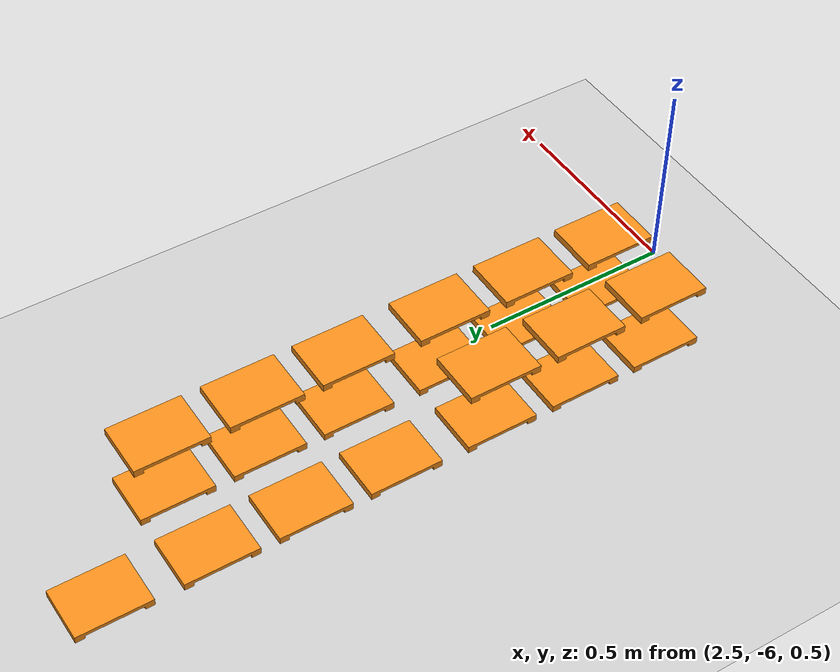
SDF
<sdf version="1.7">
 <world name="default">
  <model name="ground_plane">
   <static>1</static>
   <link name="link">
    <collision name="collision">
     <geometry><plane><normal>0 0 1</normal><size>100 100</size></plane></geometry>
     <surface>
      <contact><collide_bitmask>65535</collide_bitmask></contact>
      <friction><ode><mu>1</mu><mu2>1</mu2></ode></friction>
     </surface>
    </collision>
    <visual name="visual">
     <cast_shadows>0</cast_shadows>
     <geometry><plane><normal>0 0 1</normal><size>100 100</size></plane></geometry>
     <material>
      <script><uri>file://media/materials/scripts/gazebo.material</uri><name>Gazebo/Grey</name></script>
     </material>
    </visual>
   </link>
  </model>
  <model name="pallet_223">
   <pose>2.60533 -4.887 0.33091 2.3e-05 -0.014052 -7e-06</pose>
   <link name="link">
    <inertial>
     <pose>0 0 0 0 -0 1.571</pose>
     <inertia>
      <ixx>0.00220983</ixx>
      <ixy>0</ixy>
      <ixz>0</ixz>
      <iyy>0.00128087</iyy>
      <iyz>0</iyz>
      <izz>0.00244903</izz>
     </inertia>
     <mass>0.01</mass>
    </inertial>
    <visual name="visual1">
     <cast_shadows>0</cast_shadows>
     <geometry><mesh><uri>model://pallet/meshes/pallet.stl</uri></mesh></geometry>
     <material>
      <script><uri>file://media/materials/scripts/gazebo.material</uri><name>Gazebo/Orange</name></script>
      <shader type="pixel"><normal_map>__default__</normal_map></shader>
      <emissive>0 0 0 1</emissive>
     </material>
     <pose>0 0 -0 0 -0 1.571</pose>
    </visual>
    <collision name="collision_0">
     <pose>0 0 0 0 -0 1.571</pose>
     <geometry><mesh><uri>model://pallet/meshes/pallet.stl</uri></mesh></geometry>
     <surface>
      <friction>
       <ode><mu>1</mu><mu2>1</mu2><fdir1>0 0 0</fdir1><slip1>0</slip1><slip2>0</slip2></ode>
       <torsional>
        <coefficient>1</coefficient>
        <patch_radius>0</patch_radius>
        <surface_radius>0</surface_radius>
        <use_patch_radius>1</use_patch_radius>
        <ode><slip>0</slip></ode>
       </torsional>
      </friction>
      <bounce><restitution_coefficient>0</restitution_coefficient><threshold>1e+06</threshold></bounce>
      <contact>
       <collide_without_contact>0</collide_without_contact>
       <collide_without_contact_bitmask>1</collide_without_contact_bitmask>
       <collide_bitmask>1</collide_bitmask>
       <ode>
        <soft_cfm>0</soft_cfm>
        <soft_erp>0.2</soft_erp>
        <kp>1e+13</kp>
        <kd>1</kd>
        <max_vel>0.01</max_vel>
        <min_depth>0</min_depth>
       </ode>
       <bullet>
        <split_impulse>1</split_impulse>
        <split_impulse_penetration_threshold>-0.01</split_impulse_penetration_threshold>
        <soft_cfm>0</soft_cfm>
        <soft_erp>0.2</soft_erp>
        <kp>1e+13</kp>
        <kd>1</kd>
       </bullet>
      </contact>
     </surface>
    </collision>
   </link>
   <static>0</static>
  </model>
  <model name="pallet_224">
   <pose>2.60533 -4.637 0.330912 1.3e-05 -0.014053 5e-06</pose>
   <link name="link">
    <inertial>
     <pose>0 0 0 0 -0 1.571</pose>
     <inertia>
      <ixx>0.00220983</ixx>
      <ixy>0</ixy>
      <ixz>0</ixz>
      <iyy>0.00128087</iyy>
      <iyz>0</iyz>
      <izz>0.00244903</izz>
     </inertia>
     <mass>0.01</mass>
    </inertial>
    <visual name="visual1">
     <cast_shadows>0</cast_shadows>
     <geometry><mesh><uri>model://pallet/meshes/pallet.stl</uri></mesh></geometry>
     <material>
      <script><uri>file://media/materials/scripts/gazebo.material</uri><name>Gazebo/Orange</name></script>
      <shader type="pixel"><normal_map>__default__</normal_map></shader>
      <emissive>0 0 0 1</emissive>
     </material>
     <pose>0 0 -0 0 -0 1.571</pose>
    </visual>
    <collision name="collision_0">
     <pose>0 0 0 0 -0 1.571</pose>
     <geometry><mesh><uri>model://pallet/meshes/pallet.stl</uri></mesh></geometry>
     <surface>
      <friction>
       <ode><mu>1</mu><mu2>1</mu2><fdir1>0 0 0</fdir1><slip1>0</slip1><slip2>0</slip2></ode>
       <torsional>
        <coefficient>1</coefficient>
        <patch_radius>0</patch_radius>
        <surface_radius>0</surface_radius>
        <use_patch_radius>1</use_patch_radius>
        <ode><slip>0</slip></ode>
       </torsional>
      </friction>
      <bounce><restitution_coefficient>0</restitution_coefficient><threshold>1e+06</threshold></bounce>
      <contact>
       <collide_without_contact>0</collide_without_contact>
       <collide_without_contact_bitmask>1</collide_without_contact_bitmask>
       <collide_bitmask>1</collide_bitmask>
       <ode>
        <soft_cfm>0</soft_cfm>
        <soft_erp>0.2</soft_erp>
        <kp>1e+13</kp>
        <kd>1</kd>
        <max_vel>0.01</max_vel>
        <min_depth>0</min_depth>
       </ode>
       <bullet>
        <split_impulse>1</split_impulse>
        <split_impulse_penetration_threshold>-0.01</split_impulse_penetration_threshold>
        <soft_cfm>0</soft_cfm>
        <soft_erp>0.2</soft_erp>
        <kp>1e+13</kp>
        <kd>1</kd>
       </bullet>
      </contact>
     </surface>
    </collision>
   </link>
   <static>0</static>
  </model>
  <model name="pallet_225">
   <pose>2.60533 -5.137 0.330909 2.9e-05 -0.014052 3e-06</pose>
   <link name="link">
    <inertial>
     <pose>0 0 0 0 -0 1.571</pose>
     <inertia>
      <ixx>0.00220983</ixx>
      <ixy>0</ixy>
      <ixz>0</ixz>
      <iyy>0.00128087</iyy>
      <iyz>0</iyz>
      <izz>0.00244903</izz>
     </inertia>
     <mass>0.01</mass>
    </inertial>
    <visual name="visual1">
     <cast_shadows>0</cast_shadows>
     <geometry><mesh><uri>model://pallet/meshes/pallet.stl</uri></mesh></geometry>
     <material>
      <script><uri>file://media/materials/scripts/gazebo.material</uri><name>Gazebo/Orange</name></script>
      <shader type="pixel"><normal_map>__default__</normal_map></shader>
      <emissive>0 0 0 1</emissive>
     </material>
     <pose>0 0 -0 0 -0 1.571</pose>
    </visual>
    <collision name="collision_0">
     <pose>0 0 0 0 -0 1.571</pose>
     <geometry><mesh><uri>model://pallet/meshes/pallet.stl</uri></mesh></geometry>
     <surface>
      <friction>
       <ode><mu>1</mu><mu2>1</mu2><fdir1>0 0 0</fdir1><slip1>0</slip1><slip2>0</slip2></ode>
       <torsional>
        <coefficient>1</coefficient>
        <patch_radius>0</patch_radius>
        <surface_radius>0</surface_radius>
        <use_patch_radius>1</use_patch_radius>
        <ode><slip>0</slip></ode>
       </torsional>
      </friction>
      <bounce><restitution_coefficient>0</restitution_coefficient><threshold>1e+06</threshold></bounce>
      <contact>
       <collide_without_contact>0</collide_without_contact>
       <collide_without_contact_bitmask>1</collide_without_contact_bitmask>
       <collide_bitmask>1</collide_bitmask>
       <ode>
        <soft_cfm>0</soft_cfm>
        <soft_erp>0.2</soft_erp>
        <kp>1e+13</kp>
        <kd>1</kd>
        <max_vel>0.01</max_vel>
        <min_depth>0</min_depth>
       </ode>
       <bullet>
        <split_impulse>1</split_impulse>
        <split_impulse_penetration_threshold>-0.01</split_impulse_penetration_threshold>
        <soft_cfm>0</soft_cfm>
        <soft_erp>0.2</soft_erp>
        <kp>1e+13</kp>
        <kd>1</kd>
       </bullet>
      </contact>
     </surface>
    </collision>
   </link>
   <static>0</static>
  </model>
  <model name="pallet_226">
   <pose>2.60534 -5.6625 0.330907 2.4e-05 -0.014052 -7e-06</pose>
   <link name="link">
    <inertial>
     <pose>0 0 0 0 -0 1.571</pose>
     <inertia>
      <ixx>0.00220983</ixx>
      <ixy>0</ixy>
      <ixz>0</ixz>
      <iyy>0.00128087</iyy>
      <iyz>0</iyz>
      <izz>0.00244903</izz>
     </inertia>
     <mass>0.01</mass>
    </inertial>
    <visual name="visual1">
     <cast_shadows>0</cast_shadows>
     <geometry><mesh><uri>model://pallet/meshes/pallet.stl</uri></mesh></geometry>
     <material>
      <script><uri>file://media/materials/scripts/gazebo.material</uri><name>Gazebo/Orange</name></script>
      <shader type="pixel"><normal_map>__default__</normal_map></shader>
      <emissive>0 0 0 1</emissive>
     </material>
     <pose>0 0 -0 0 -0 1.571</pose>
    </visual>
    <collision name="collision_0">
     <pose>0 0 0 0 -0 1.571</pose>
     <geometry><mesh><uri>model://pallet/meshes/pallet.stl</uri></mesh></geometry>
     <surface>
      <friction>
       <ode><mu>1</mu><mu2>1</mu2><fdir1>0 0 0</fdir1><slip1>0</slip1><slip2>0</slip2></ode>
       <torsional>
        <coefficient>1</coefficient>
        <patch_radius>0</patch_radius>
        <surface_radius>0</surface_radius>
        <use_patch_radius>1</use_patch_radius>
        <ode><slip>0</slip></ode>
       </torsional>
      </friction>
      <bounce><restitution_coefficient>0</restitution_coefficient><threshold>1e+06</threshold></bounce>
      <contact>
       <collide_without_contact>0</collide_without_contact>
       <collide_without_contact_bitmask>1</collide_without_contact_bitmask>
       <collide_bitmask>1</collide_bitmask>
       <ode>
        <soft_cfm>0</soft_cfm>
        <soft_erp>0.2</soft_erp>
        <kp>1e+13</kp>
        <kd>1</kd>
        <max_vel>0.01</max_vel>
        <min_depth>0</min_depth>
       </ode>
       <bullet>
        <split_impulse>1</split_impulse>
        <split_impulse_penetration_threshold>-0.01</split_impulse_penetration_threshold>
        <soft_cfm>0</soft_cfm>
        <soft_erp>0.2</soft_erp>
        <kp>1e+13</kp>
        <kd>1</kd>
       </bullet>
      </contact>
     </surface>
    </collision>
   </link>
   <static>0</static>
  </model>
  <model name="pallet_227">
   <pose>2.60534 -5.4125 0.330909 1.1e-05 -0.014052 3e-06</pose>
   <link name="link">
    <inertial>
     <pose>0 0 0 0 -0 1.571</pose>
     <inertia>
      <ixx>0.00220983</ixx>
      <ixy>0</ixy>
      <ixz>0</ixz>
      <iyy>0.00128087</iyy>
      <iyz>0</iyz>
      <izz>0.00244903</izz>
     </inertia>
     <mass>0.01</mass>
    </inertial>
    <visual name="visual1">
     <cast_shadows>0</cast_shadows>
     <geometry><mesh><uri>model://pallet/meshes/pallet.stl</uri></mesh></geometry>
     <material>
      <script><uri>file://media/materials/scripts/gazebo.material</uri><name>Gazebo/Orange</name></script>
      <shader type="pixel"><normal_map>__default__</normal_map></shader>
      <emissive>0 0 0 1</emissive>
     </material>
     <pose>0 0 -0 0 -0 1.571</pose>
    </visual>
    <collision name="collision_0">
     <pose>0 0 0 0 -0 1.571</pose>
     <geometry><mesh><uri>model://pallet/meshes/pallet.stl</uri></mesh></geometry>
     <surface>
      <friction>
       <ode><mu>1</mu><mu2>1</mu2><fdir1>0 0 0</fdir1><slip1>0</slip1><slip2>0</slip2></ode>
       <torsional>
        <coefficient>1</coefficient>
        <patch_radius>0</patch_radius>
        <surface_radius>0</surface_radius>
        <use_patch_radius>1</use_patch_radius>
        <ode><slip>0</slip></ode>
       </torsional>
      </friction>
      <bounce><restitution_coefficient>0</restitution_coefficient><threshold>1e+06</threshold></bounce>
      <contact>
       <collide_without_contact>0</collide_without_contact>
       <collide_without_contact_bitmask>1</collide_without_contact_bitmask>
       <collide_bitmask>1</collide_bitmask>
       <ode>
        <soft_cfm>0</soft_cfm>
        <soft_erp>0.2</soft_erp>
        <kp>1e+13</kp>
        <kd>1</kd>
        <max_vel>0.01</max_vel>
        <min_depth>0</min_depth>
       </ode>
       <bullet>
        <split_impulse>1</split_impulse>
        <split_impulse_penetration_threshold>-0.01</split_impulse_penetration_threshold>
        <soft_cfm>0</soft_cfm>
        <soft_erp>0.2</soft_erp>
        <kp>1e+13</kp>
        <kd>1</kd>
       </bullet>
      </contact>
     </surface>
    </collision>
   </link>
   <static>0</static>
  </model>
  <model name="pallet_228">
   <pose>2.60534 -5.9125 0.330907 1.7e-05 -0.014052 7e-06</pose>
   <link name="link">
    <inertial>
     <pose>0 0 0 0 -0 1.571</pose>
     <inertia>
      <ixx>0.00220983</ixx>
      <ixy>0</ixy>
      <ixz>0</ixz>
      <iyy>0.00128087</iyy>
      <iyz>0</iyz>
      <izz>0.00244903</izz>
     </inertia>
     <mass>0.01</mass>
    </inertial>
    <visual name="visual1">
     <cast_shadows>0</cast_shadows>
     <geometry><mesh><uri>model://pallet/meshes/pallet.stl</uri></mesh></geometry>
     <material>
      <script><uri>file://media/materials/scripts/gazebo.material</uri><name>Gazebo/Orange</name></script>
      <shader type="pixel"><normal_map>__default__</normal_map></shader>
      <emissive>0 0 0 1</emissive>
     </material>
     <pose>0 0 -0 0 -0 1.571</pose>
    </visual>
    <collision name="collision_0">
     <pose>0 0 0 0 -0 1.571</pose>
     <geometry><mesh><uri>model://pallet/meshes/pallet.stl</uri></mesh></geometry>
     <surface>
      <friction>
       <ode><mu>1</mu><mu2>1</mu2><fdir1>0 0 0</fdir1><slip1>0</slip1><slip2>0</slip2></ode>
       <torsional>
        <coefficient>1</coefficient>
        <patch_radius>0</patch_radius>
        <surface_radius>0</surface_radius>
        <use_patch_radius>1</use_patch_radius>
        <ode><slip>0</slip></ode>
       </torsional>
      </friction>
      <bounce><restitution_coefficient>0</restitution_coefficient><threshold>1e+06</threshold></bounce>
      <contact>
       <collide_without_contact>0</collide_without_contact>
       <collide_without_contact_bitmask>1</collide_without_contact_bitmask>
       <collide_bitmask>1</collide_bitmask>
       <ode>
        <soft_cfm>0</soft_cfm>
        <soft_erp>0.2</soft_erp>
        <kp>1e+13</kp>
        <kd>1</kd>
        <max_vel>0.01</max_vel>
        <min_depth>0</min_depth>
       </ode>
       <bullet>
        <split_impulse>1</split_impulse>
        <split_impulse_penetration_threshold>-0.01</split_impulse_penetration_threshold>
        <soft_cfm>0</soft_cfm>
        <soft_erp>0.2</soft_erp>
        <kp>1e+13</kp>
        <kd>1</kd>
       </bullet>
      </contact>
     </surface>
    </collision>
   </link>
   <static>0</static>
  </model>
  <model name="pallet_234">
   <pose>2.38565 -4.3625 0.330988 2.9e-05 -0.013088 9e-06</pose>
   <link name="link">
    <inertial>
     <pose>0 0 0 0 -0 1.571</pose>
     <inertia>
      <ixx>0.00220983</ixx>
      <ixy>0</ixy>
      <ixz>0</ixz>
      <iyy>0.00128087</iyy>
      <iyz>0</iyz>
      <izz>0.00244903</izz>
     </inertia>
     <mass>0.01</mass>
    </inertial>
    <visual name="visual1">
     <cast_shadows>0</cast_shadows>
     <geometry><mesh><uri>model://pallet/meshes/pallet.stl</uri></mesh></geometry>
     <material>
      <script><uri>file://media/materials/scripts/gazebo.material</uri><name>Gazebo/Orange</name></script>
      <shader type="pixel"><normal_map>__default__</normal_map></shader>
      <emissive>0 0 0 1</emissive>
     </material>
     <pose>0 0 -0 0 -0 1.571</pose>
    </visual>
    <collision name="collision_0">
     <pose>0 0 0 0 -0 1.571</pose>
     <geometry><mesh><uri>model://pallet/meshes/pallet.stl</uri></mesh></geometry>
     <surface>
      <friction>
       <ode><mu>1</mu><mu2>1</mu2><fdir1>0 0 0</fdir1><slip1>0</slip1><slip2>0</slip2></ode>
       <torsional>
        <coefficient>1</coefficient>
        <patch_radius>0</patch_radius>
        <surface_radius>0</surface_radius>
        <use_patch_radius>1</use_patch_radius>
        <ode><slip>0</slip></ode>
       </torsional>
      </friction>
      <bounce><restitution_coefficient>0</restitution_coefficient><threshold>1e+06</threshold></bounce>
      <contact>
       <collide_without_contact>0</collide_without_contact>
       <collide_without_contact_bitmask>1</collide_without_contact_bitmask>
       <collide_bitmask>1</collide_bitmask>
       <ode>
        <soft_cfm>0</soft_cfm>
        <soft_erp>0.2</soft_erp>
        <kp>1e+13</kp>
        <kd>1</kd>
        <max_vel>0.01</max_vel>
        <min_depth>0</min_depth>
       </ode>
       <bullet>
        <split_impulse>1</split_impulse>
        <split_impulse_penetration_threshold>-0.01</split_impulse_penetration_threshold>
        <soft_cfm>0</soft_cfm>
        <soft_erp>0.2</soft_erp>
        <kp>1e+13</kp>
        <kd>1</kd>
       </bullet>
      </contact>
     </surface>
    </collision>
   </link>
   <static>0</static>
  </model>
  <model name="pallet_235">
   <pose>2.38565 -4.887 0.330986 2.7e-05 -0.013089 -8e-06</pose>
   <link name="link">
    <inertial>
     <pose>0 0 0 0 -0 1.571</pose>
     <inertia>
      <ixx>0.00220983</ixx>
      <ixy>0</ixy>
      <ixz>0</ixz>
      <iyy>0.00128087</iyy>
      <iyz>0</iyz>
      <izz>0.00244903</izz>
     </inertia>
     <mass>0.01</mass>
    </inertial>
    <visual name="visual1">
     <cast_shadows>0</cast_shadows>
     <geometry><mesh><uri>model://pallet/meshes/pallet.stl</uri></mesh></geometry>
     <material>
      <script><uri>file://media/materials/scripts/gazebo.material</uri><name>Gazebo/Orange</name></script>
      <shader type="pixel"><normal_map>__default__</normal_map></shader>
      <emissive>0 0 0 1</emissive>
     </material>
     <pose>0 0 -0 0 -0 1.571</pose>
    </visual>
    <collision name="collision_0">
     <pose>0 0 0 0 -0 1.571</pose>
     <geometry><mesh><uri>model://pallet/meshes/pallet.stl</uri></mesh></geometry>
     <surface>
      <friction>
       <ode><mu>1</mu><mu2>1</mu2><fdir1>0 0 0</fdir1><slip1>0</slip1><slip2>0</slip2></ode>
       <torsional>
        <coefficient>1</coefficient>
        <patch_radius>0</patch_radius>
        <surface_radius>0</surface_radius>
        <use_patch_radius>1</use_patch_radius>
        <ode><slip>0</slip></ode>
       </torsional>
      </friction>
      <bounce><restitution_coefficient>0</restitution_coefficient><threshold>1e+06</threshold></bounce>
      <contact>
       <collide_without_contact>0</collide_without_contact>
       <collide_without_contact_bitmask>1</collide_without_contact_bitmask>
       <collide_bitmask>1</collide_bitmask>
       <ode>
        <soft_cfm>0</soft_cfm>
        <soft_erp>0.2</soft_erp>
        <kp>1e+13</kp>
        <kd>1</kd>
        <max_vel>0.01</max_vel>
        <min_depth>0</min_depth>
       </ode>
       <bullet>
        <split_impulse>1</split_impulse>
        <split_impulse_penetration_threshold>-0.01</split_impulse_penetration_threshold>
        <soft_cfm>0</soft_cfm>
        <soft_erp>0.2</soft_erp>
        <kp>1e+13</kp>
        <kd>1</kd>
       </bullet>
      </contact>
     </surface>
    </collision>
   </link>
   <static>0</static>
  </model>
  <model name="pallet_236">
   <pose>2.38565 -4.637 0.330988 2.2e-05 -0.013088 5e-06</pose>
   <link name="link">
    <inertial>
     <pose>0 0 0 0 -0 1.571</pose>
     <inertia>
      <ixx>0.00220983</ixx>
      <ixy>0</ixy>
      <ixz>0</ixz>
      <iyy>0.00128087</iyy>
      <iyz>0</iyz>
      <izz>0.00244903</izz>
     </inertia>
     <mass>0.01</mass>
    </inertial>
    <visual name="visual1">
     <cast_shadows>0</cast_shadows>
     <geometry><mesh><uri>model://pallet/meshes/pallet.stl</uri></mesh></geometry>
     <material>
      <script><uri>file://media/materials/scripts/gazebo.material</uri><name>Gazebo/Orange</name></script>
      <shader type="pixel"><normal_map>__default__</normal_map></shader>
      <emissive>0 0 0 1</emissive>
     </material>
     <pose>0 0 -0 0 -0 1.571</pose>
    </visual>
    <collision name="collision_0">
     <pose>0 0 0 0 -0 1.571</pose>
     <geometry><mesh><uri>model://pallet/meshes/pallet.stl</uri></mesh></geometry>
     <surface>
      <friction>
       <ode><mu>1</mu><mu2>1</mu2><fdir1>0 0 0</fdir1><slip1>0</slip1><slip2>0</slip2></ode>
       <torsional>
        <coefficient>1</coefficient>
        <patch_radius>0</patch_radius>
        <surface_radius>0</surface_radius>
        <use_patch_radius>1</use_patch_radius>
        <ode><slip>0</slip></ode>
       </torsional>
      </friction>
      <bounce><restitution_coefficient>0</restitution_coefficient><threshold>1e+06</threshold></bounce>
      <contact>
       <collide_without_contact>0</collide_without_contact>
       <collide_without_contact_bitmask>1</collide_without_contact_bitmask>
       <collide_bitmask>1</collide_bitmask>
       <ode>
        <soft_cfm>0</soft_cfm>
        <soft_erp>0.2</soft_erp>
        <kp>1e+13</kp>
        <kd>1</kd>
        <max_vel>0.01</max_vel>
        <min_depth>0</min_depth>
       </ode>
       <bullet>
        <split_impulse>1</split_impulse>
        <split_impulse_penetration_threshold>-0.01</split_impulse_penetration_threshold>
        <soft_cfm>0</soft_cfm>
        <soft_erp>0.2</soft_erp>
        <kp>1e+13</kp>
        <kd>1</kd>
       </bullet>
      </contact>
     </surface>
    </collision>
   </link>
   <static>0</static>
  </model>
  <model name="pallet_237">
   <pose>2.38565 -5.137 0.330985 2.6e-05 -0.013087 3e-06</pose>
   <link name="link">
    <inertial>
     <pose>0 0 0 0 -0 1.571</pose>
     <inertia>
      <ixx>0.00220983</ixx>
      <ixy>0</ixy>
      <ixz>0</ixz>
      <iyy>0.00128087</iyy>
      <iyz>0</iyz>
      <izz>0.00244903</izz>
     </inertia>
     <mass>0.01</mass>
    </inertial>
    <visual name="visual1">
     <cast_shadows>0</cast_shadows>
     <geometry><mesh><uri>model://pallet/meshes/pallet.stl</uri></mesh></geometry>
     <material>
      <script><uri>file://media/materials/scripts/gazebo.material</uri><name>Gazebo/Orange</name></script>
      <shader type="pixel"><normal_map>__default__</normal_map></shader>
      <emissive>0 0 0 1</emissive>
     </material>
     <pose>0 0 -0 0 -0 1.571</pose>
    </visual>
    <collision name="collision_0">
     <pose>0 0 0 0 -0 1.571</pose>
     <geometry><mesh><uri>model://pallet/meshes/pallet.stl</uri></mesh></geometry>
     <surface>
      <friction>
       <ode><mu>1</mu><mu2>1</mu2><fdir1>0 0 0</fdir1><slip1>0</slip1><slip2>0</slip2></ode>
       <torsional>
        <coefficient>1</coefficient>
        <patch_radius>0</patch_radius>
        <surface_radius>0</surface_radius>
        <use_patch_radius>1</use_patch_radius>
        <ode><slip>0</slip></ode>
       </torsional>
      </friction>
      <bounce><restitution_coefficient>0</restitution_coefficient><threshold>1e+06</threshold></bounce>
      <contact>
       <collide_without_contact>0</collide_without_contact>
       <collide_without_contact_bitmask>1</collide_without_contact_bitmask>
       <collide_bitmask>1</collide_bitmask>
       <ode>
        <soft_cfm>0</soft_cfm>
        <soft_erp>0.2</soft_erp>
        <kp>1e+13</kp>
        <kd>1</kd>
        <max_vel>0.01</max_vel>
        <min_depth>0</min_depth>
       </ode>
       <bullet>
        <split_impulse>1</split_impulse>
        <split_impulse_penetration_threshold>-0.01</split_impulse_penetration_threshold>
        <soft_cfm>0</soft_cfm>
        <soft_erp>0.2</soft_erp>
        <kp>1e+13</kp>
        <kd>1</kd>
       </bullet>
      </contact>
     </surface>
    </collision>
   </link>
   <static>0</static>
  </model>
  <model name="pallet_238">
   <pose>2.38566 -5.6625 0.330983 2.7e-05 -0.013088 -7e-06</pose>
   <link name="link">
    <inertial>
     <pose>0 0 0 0 -0 1.571</pose>
     <inertia>
      <ixx>0.00220983</ixx>
      <ixy>0</ixy>
      <ixz>0</ixz>
      <iyy>0.00128087</iyy>
      <iyz>0</iyz>
      <izz>0.00244903</izz>
     </inertia>
     <mass>0.01</mass>
    </inertial>
    <visual name="visual1">
     <cast_shadows>0</cast_shadows>
     <geometry><mesh><uri>model://pallet/meshes/pallet.stl</uri></mesh></geometry>
     <material>
      <script><uri>file://media/materials/scripts/gazebo.material</uri><name>Gazebo/Orange</name></script>
      <shader type="pixel"><normal_map>__default__</normal_map></shader>
      <emissive>0 0 0 1</emissive>
     </material>
     <pose>0 0 -0 0 -0 1.571</pose>
    </visual>
    <collision name="collision_0">
     <pose>0 0 0 0 -0 1.571</pose>
     <geometry><mesh><uri>model://pallet/meshes/pallet.stl</uri></mesh></geometry>
     <surface>
      <friction>
       <ode><mu>1</mu><mu2>1</mu2><fdir1>0 0 0</fdir1><slip1>0</slip1><slip2>0</slip2></ode>
       <torsional>
        <coefficient>1</coefficient>
        <patch_radius>0</patch_radius>
        <surface_radius>0</surface_radius>
        <use_patch_radius>1</use_patch_radius>
        <ode><slip>0</slip></ode>
       </torsional>
      </friction>
      <bounce><restitution_coefficient>0</restitution_coefficient><threshold>1e+06</threshold></bounce>
      <contact>
       <collide_without_contact>0</collide_without_contact>
       <collide_without_contact_bitmask>1</collide_without_contact_bitmask>
       <collide_bitmask>1</collide_bitmask>
       <ode>
        <soft_cfm>0</soft_cfm>
        <soft_erp>0.2</soft_erp>
        <kp>1e+13</kp>
        <kd>1</kd>
        <max_vel>0.01</max_vel>
        <min_depth>0</min_depth>
       </ode>
       <bullet>
        <split_impulse>1</split_impulse>
        <split_impulse_penetration_threshold>-0.01</split_impulse_penetration_threshold>
        <soft_cfm>0</soft_cfm>
        <soft_erp>0.2</soft_erp>
        <kp>1e+13</kp>
        <kd>1</kd>
       </bullet>
      </contact>
     </surface>
    </collision>
   </link>
   <static>0</static>
  </model>
  <model name="pallet_239">
   <pose>2.38566 -5.4125 0.330985 1.8e-05 -0.013086 5e-06</pose>
   <link name="link">
    <inertial>
     <pose>0 0 0 0 -0 1.571</pose>
     <inertia>
      <ixx>0.00220983</ixx>
      <ixy>0</ixy>
      <ixz>0</ixz>
      <iyy>0.00128087</iyy>
      <iyz>0</iyz>
      <izz>0.00244903</izz>
     </inertia>
     <mass>0.01</mass>
    </inertial>
    <visual name="visual1">
     <cast_shadows>0</cast_shadows>
     <geometry><mesh><uri>model://pallet/meshes/pallet.stl</uri></mesh></geometry>
     <material>
      <script><uri>file://media/materials/scripts/gazebo.material</uri><name>Gazebo/Orange</name></script>
      <shader type="pixel"><normal_map>__default__</normal_map></shader>
      <emissive>0 0 0 1</emissive>
     </material>
     <pose>0 0 -0 0 -0 1.571</pose>
    </visual>
    <collision name="collision_0">
     <pose>0 0 0 0 -0 1.571</pose>
     <geometry><mesh><uri>model://pallet/meshes/pallet.stl</uri></mesh></geometry>
     <surface>
      <friction>
       <ode><mu>1</mu><mu2>1</mu2><fdir1>0 0 0</fdir1><slip1>0</slip1><slip2>0</slip2></ode>
       <torsional>
        <coefficient>1</coefficient>
        <patch_radius>0</patch_radius>
        <surface_radius>0</surface_radius>
        <use_patch_radius>1</use_patch_radius>
        <ode><slip>0</slip></ode>
       </torsional>
      </friction>
      <bounce><restitution_coefficient>0</restitution_coefficient><threshold>1e+06</threshold></bounce>
      <contact>
       <collide_without_contact>0</collide_without_contact>
       <collide_without_contact_bitmask>1</collide_without_contact_bitmask>
       <collide_bitmask>1</collide_bitmask>
       <ode>
        <soft_cfm>0</soft_cfm>
        <soft_erp>0.2</soft_erp>
        <kp>1e+13</kp>
        <kd>1</kd>
        <max_vel>0.01</max_vel>
        <min_depth>0</min_depth>
       </ode>
       <bullet>
        <split_impulse>1</split_impulse>
        <split_impulse_penetration_threshold>-0.01</split_impulse_penetration_threshold>
        <soft_cfm>0</soft_cfm>
        <soft_erp>0.2</soft_erp>
        <kp>1e+13</kp>
        <kd>1</kd>
       </bullet>
      </contact>
     </surface>
    </collision>
   </link>
   <static>0</static>
  </model>
  <model name="pallet_240">
   <pose>2.38566 -5.9125 0.330982 2.6e-05 -0.013087 5e-06</pose>
   <link name="link">
    <inertial>
     <pose>0 0 0 0 -0 1.571</pose>
     <inertia>
      <ixx>0.00220983</ixx>
      <ixy>0</ixy>
      <ixz>0</ixz>
      <iyy>0.00128087</iyy>
      <iyz>0</iyz>
      <izz>0.00244903</izz>
     </inertia>
     <mass>0.01</mass>
    </inertial>
    <visual name="visual1">
     <cast_shadows>0</cast_shadows>
     <geometry><mesh><uri>model://pallet/meshes/pallet.stl</uri></mesh></geometry>
     <material>
      <script><uri>file://media/materials/scripts/gazebo.material</uri><name>Gazebo/Orange</name></script>
      <shader type="pixel"><normal_map>__default__</normal_map></shader>
      <emissive>0 0 0 1</emissive>
     </material>
     <pose>0 0 -0 0 -0 1.571</pose>
    </visual>
    <collision name="collision_0">
     <pose>0 0 0 0 -0 1.571</pose>
     <geometry><mesh><uri>model://pallet/meshes/pallet.stl</uri></mesh></geometry>
     <surface>
      <friction>
       <ode><mu>1</mu><mu2>1</mu2><fdir1>0 0 0</fdir1><slip1>0</slip1><slip2>0</slip2></ode>
       <torsional>
        <coefficient>1</coefficient>
        <patch_radius>0</patch_radius>
        <surface_radius>0</surface_radius>
        <use_patch_radius>1</use_patch_radius>
        <ode><slip>0</slip></ode>
       </torsional>
      </friction>
      <bounce><restitution_coefficient>0</restitution_coefficient><threshold>1e+06</threshold></bounce>
      <contact>
       <collide_without_contact>0</collide_without_contact>
       <collide_without_contact_bitmask>1</collide_without_contact_bitmask>
       <collide_bitmask>1</collide_bitmask>
       <ode>
        <soft_cfm>0</soft_cfm>
        <soft_erp>0.2</soft_erp>
        <kp>1e+13</kp>
        <kd>1</kd>
        <max_vel>0.01</max_vel>
        <min_depth>0</min_depth>
       </ode>
       <bullet>
        <split_impulse>1</split_impulse>
        <split_impulse_penetration_threshold>-0.01</split_impulse_penetration_threshold>
        <soft_cfm>0</soft_cfm>
        <soft_erp>0.2</soft_erp>
        <kp>1e+13</kp>
        <kd>1</kd>
       </bullet>
      </contact>
     </surface>
    </collision>
   </link>
   <static>0</static>
  </model>
  <model name="pallet_250">
   <pose>2.3833 -5.6625 0.510967 4e-05 -0.013088 -2e-05</pose>
   <link name="link">
    <inertial>
     <pose>0 0 0 0 -0 1.571</pose>
     <inertia>
      <ixx>0.00220983</ixx>
      <ixy>0</ixy>
      <ixz>0</ixz>
      <iyy>0.00128087</iyy>
      <iyz>0</iyz>
      <izz>0.00244903</izz>
     </inertia>
     <mass>0.01</mass>
    </inertial>
    <visual name="visual1">
     <cast_shadows>0</cast_shadows>
     <geometry><mesh><uri>model://pallet/meshes/pallet.stl</uri></mesh></geometry>
     <material>
      <script><uri>file://media/materials/scripts/gazebo.material</uri><name>Gazebo/Orange</name></script>
      <shader type="pixel"><normal_map>__default__</normal_map></shader>
      <emissive>0 0 0 1</emissive>
     </material>
     <pose>0 0 -0 0 -0 1.571</pose>
    </visual>
    <collision name="collision_0">
     <pose>0 0 0 0 -0 1.571</pose>
     <geometry><mesh><uri>model://pallet/meshes/pallet.stl</uri></mesh></geometry>
     <surface>
      <friction>
       <ode><mu>1</mu><mu2>1</mu2><fdir1>0 0 0</fdir1><slip1>0</slip1><slip2>0</slip2></ode>
       <torsional>
        <coefficient>1</coefficient>
        <patch_radius>0</patch_radius>
        <surface_radius>0</surface_radius>
        <use_patch_radius>1</use_patch_radius>
        <ode><slip>0</slip></ode>
       </torsional>
      </friction>
      <bounce><restitution_coefficient>0</restitution_coefficient><threshold>1e+06</threshold></bounce>
      <contact>
       <collide_without_contact>0</collide_without_contact>
       <collide_without_contact_bitmask>1</collide_without_contact_bitmask>
       <collide_bitmask>1</collide_bitmask>
       <ode>
        <soft_cfm>0</soft_cfm>
        <soft_erp>0.2</soft_erp>
        <kp>1e+13</kp>
        <kd>1</kd>
        <max_vel>0.01</max_vel>
        <min_depth>0</min_depth>
       </ode>
       <bullet>
        <split_impulse>1</split_impulse>
        <split_impulse_penetration_threshold>-0.01</split_impulse_penetration_threshold>
        <soft_cfm>0</soft_cfm>
        <soft_erp>0.2</soft_erp>
        <kp>1e+13</kp>
        <kd>1</kd>
       </bullet>
      </contact>
     </surface>
    </collision>
   </link>
   <static>0</static>
  </model>
  <model name="pallet_251">
   <pose>2.3833 -5.4125 0.51097 1e-05 -0.013088 8e-06</pose>
   <link name="link">
    <inertial>
     <pose>0 0 0 0 -0 1.571</pose>
     <inertia>
      <ixx>0.00220983</ixx>
      <ixy>0</ixy>
      <ixz>0</ixz>
      <iyy>0.00128087</iyy>
      <iyz>0</iyz>
      <izz>0.00244903</izz>
     </inertia>
     <mass>0.01</mass>
    </inertial>
    <visual name="visual1">
     <cast_shadows>0</cast_shadows>
     <geometry><mesh><uri>model://pallet/meshes/pallet.stl</uri></mesh></geometry>
     <material>
      <script><uri>file://media/materials/scripts/gazebo.material</uri><name>Gazebo/Orange</name></script>
      <shader type="pixel"><normal_map>__default__</normal_map></shader>
      <emissive>0 0 0 1</emissive>
     </material>
     <pose>0 0 -0 0 -0 1.571</pose>
    </visual>
    <collision name="collision_0">
     <pose>0 0 0 0 -0 1.571</pose>
     <geometry><mesh><uri>model://pallet/meshes/pallet.stl</uri></mesh></geometry>
     <surface>
      <friction>
       <ode><mu>1</mu><mu2>1</mu2><fdir1>0 0 0</fdir1><slip1>0</slip1><slip2>0</slip2></ode>
       <torsional>
        <coefficient>1</coefficient>
        <patch_radius>0</patch_radius>
        <surface_radius>0</surface_radius>
        <use_patch_radius>1</use_patch_radius>
        <ode><slip>0</slip></ode>
       </torsional>
      </friction>
      <bounce><restitution_coefficient>0</restitution_coefficient><threshold>1e+06</threshold></bounce>
      <contact>
       <collide_without_contact>0</collide_without_contact>
       <collide_without_contact_bitmask>1</collide_without_contact_bitmask>
       <collide_bitmask>1</collide_bitmask>
       <ode>
        <soft_cfm>0</soft_cfm>
        <soft_erp>0.2</soft_erp>
        <kp>1e+13</kp>
        <kd>1</kd>
        <max_vel>0.01</max_vel>
        <min_depth>0</min_depth>
       </ode>
       <bullet>
        <split_impulse>1</split_impulse>
        <split_impulse_penetration_threshold>-0.01</split_impulse_penetration_threshold>
        <soft_cfm>0</soft_cfm>
        <soft_erp>0.2</soft_erp>
        <kp>1e+13</kp>
        <kd>1</kd>
       </bullet>
      </contact>
     </surface>
    </collision>
   </link>
   <static>0</static>
  </model>
  <model name="pallet_252">
   <pose>2.38331 -5.9125 0.510967 2.5e-05 -0.013088 1e-05</pose>
   <link name="link">
    <inertial>
     <pose>0 0 0 0 -0 1.571</pose>
     <inertia>
      <ixx>0.00220983</ixx>
      <ixy>0</ixy>
      <ixz>0</ixz>
      <iyy>0.00128087</iyy>
      <iyz>0</iyz>
      <izz>0.00244903</izz>
     </inertia>
     <mass>0.01</mass>
    </inertial>
    <visual name="visual1">
     <cast_shadows>0</cast_shadows>
     <geometry><mesh><uri>model://pallet/meshes/pallet.stl</uri></mesh></geometry>
     <material>
      <script><uri>file://media/materials/scripts/gazebo.material</uri><name>Gazebo/Orange</name></script>
      <shader type="pixel"><normal_map>__default__</normal_map></shader>
      <emissive>0 0 0 1</emissive>
     </material>
     <pose>0 0 -0 0 -0 1.571</pose>
    </visual>
    <collision name="collision_0">
     <pose>0 0 0 0 -0 1.571</pose>
     <geometry><mesh><uri>model://pallet/meshes/pallet.stl</uri></mesh></geometry>
     <surface>
      <friction>
       <ode><mu>1</mu><mu2>1</mu2><fdir1>0 0 0</fdir1><slip1>0</slip1><slip2>0</slip2></ode>
       <torsional>
        <coefficient>1</coefficient>
        <patch_radius>0</patch_radius>
        <surface_radius>0</surface_radius>
        <use_patch_radius>1</use_patch_radius>
        <ode><slip>0</slip></ode>
       </torsional>
      </friction>
      <bounce><restitution_coefficient>0</restitution_coefficient><threshold>1e+06</threshold></bounce>
      <contact>
       <collide_without_contact>0</collide_without_contact>
       <collide_without_contact_bitmask>1</collide_without_contact_bitmask>
       <collide_bitmask>1</collide_bitmask>
       <ode>
        <soft_cfm>0</soft_cfm>
        <soft_erp>0.2</soft_erp>
        <kp>1e+13</kp>
        <kd>1</kd>
        <max_vel>0.01</max_vel>
        <min_depth>0</min_depth>
       </ode>
       <bullet>
        <split_impulse>1</split_impulse>
        <split_impulse_penetration_threshold>-0.01</split_impulse_penetration_threshold>
        <soft_cfm>0</soft_cfm>
        <soft_erp>0.2</soft_erp>
        <kp>1e+13</kp>
        <kd>1</kd>
       </bullet>
      </contact>
     </surface>
    </collision>
   </link>
   <static>0</static>
  </model>
  <model name="pallet_259">
   <pose>2.6028 -4.887 0.510891 4e-05 -0.014052 -1.2e-05</pose>
   <link name="link">
    <inertial>
     <pose>0 0 0 0 -0 1.571</pose>
     <inertia>
      <ixx>0.00220983</ixx>
      <ixy>0</ixy>
      <ixz>0</ixz>
      <iyy>0.00128087</iyy>
      <iyz>0</iyz>
      <izz>0.00244903</izz>
     </inertia>
     <mass>0.01</mass>
    </inertial>
    <visual name="visual1">
     <cast_shadows>0</cast_shadows>
     <geometry><mesh><uri>model://pallet/meshes/pallet.stl</uri></mesh></geometry>
     <material>
      <script><uri>file://media/materials/scripts/gazebo.material</uri><name>Gazebo/Orange</name></script>
      <shader type="pixel"><normal_map>__default__</normal_map></shader>
      <emissive>0 0 0 1</emissive>
     </material>
     <pose>0 0 -0 0 -0 1.571</pose>
    </visual>
    <collision name="collision_0">
     <pose>0 0 0 0 -0 1.571</pose>
     <geometry><mesh><uri>model://pallet/meshes/pallet.stl</uri></mesh></geometry>
     <surface>
      <friction>
       <ode><mu>1</mu><mu2>1</mu2><fdir1>0 0 0</fdir1><slip1>0</slip1><slip2>0</slip2></ode>
       <torsional>
        <coefficient>1</coefficient>
        <patch_radius>0</patch_radius>
        <surface_radius>0</surface_radius>
        <use_patch_radius>1</use_patch_radius>
        <ode><slip>0</slip></ode>
       </torsional>
      </friction>
      <bounce><restitution_coefficient>0</restitution_coefficient><threshold>1e+06</threshold></bounce>
      <contact>
       <collide_without_contact>0</collide_without_contact>
       <collide_without_contact_bitmask>1</collide_without_contact_bitmask>
       <collide_bitmask>1</collide_bitmask>
       <ode>
        <soft_cfm>0</soft_cfm>
        <soft_erp>0.2</soft_erp>
        <kp>1e+13</kp>
        <kd>1</kd>
        <max_vel>0.01</max_vel>
        <min_depth>0</min_depth>
       </ode>
       <bullet>
        <split_impulse>1</split_impulse>
        <split_impulse_penetration_threshold>-0.01</split_impulse_penetration_threshold>
        <soft_cfm>0</soft_cfm>
        <soft_erp>0.2</soft_erp>
        <kp>1e+13</kp>
        <kd>1</kd>
       </bullet>
      </contact>
     </surface>
    </collision>
   </link>
   <static>0</static>
  </model>
  <model name="pallet_260">
   <pose>2.6028 -4.637 0.510894 2e-05 -0.014051 6e-06</pose>
   <link name="link">
    <inertial>
     <pose>0 0 0 0 -0 1.571</pose>
     <inertia>
      <ixx>0.00220983</ixx>
      <ixy>0</ixy>
      <ixz>0</ixz>
      <iyy>0.00128087</iyy>
      <iyz>0</iyz>
      <izz>0.00244903</izz>
     </inertia>
     <mass>0.01</mass>
    </inertial>
    <visual name="visual1">
     <cast_shadows>0</cast_shadows>
     <geometry><mesh><uri>model://pallet/meshes/pallet.stl</uri></mesh></geometry>
     <material>
      <script><uri>file://media/materials/scripts/gazebo.material</uri><name>Gazebo/Orange</name></script>
      <shader type="pixel"><normal_map>__default__</normal_map></shader>
      <emissive>0 0 0 1</emissive>
     </material>
     <pose>0 0 -0 0 -0 1.571</pose>
    </visual>
    <collision name="collision_0">
     <pose>0 0 0 0 -0 1.571</pose>
     <geometry><mesh><uri>model://pallet/meshes/pallet.stl</uri></mesh></geometry>
     <surface>
      <friction>
       <ode><mu>1</mu><mu2>1</mu2><fdir1>0 0 0</fdir1><slip1>0</slip1><slip2>0</slip2></ode>
       <torsional>
        <coefficient>1</coefficient>
        <patch_radius>0</patch_radius>
        <surface_radius>0</surface_radius>
        <use_patch_radius>1</use_patch_radius>
        <ode><slip>0</slip></ode>
       </torsional>
      </friction>
      <bounce><restitution_coefficient>0</restitution_coefficient><threshold>1e+06</threshold></bounce>
      <contact>
       <collide_without_contact>0</collide_without_contact>
       <collide_without_contact_bitmask>1</collide_without_contact_bitmask>
       <collide_bitmask>1</collide_bitmask>
       <ode>
        <soft_cfm>0</soft_cfm>
        <soft_erp>0.2</soft_erp>
        <kp>1e+13</kp>
        <kd>1</kd>
        <max_vel>0.01</max_vel>
        <min_depth>0</min_depth>
       </ode>
       <bullet>
        <split_impulse>1</split_impulse>
        <split_impulse_penetration_threshold>-0.01</split_impulse_penetration_threshold>
        <soft_cfm>0</soft_cfm>
        <soft_erp>0.2</soft_erp>
        <kp>1e+13</kp>
        <kd>1</kd>
       </bullet>
      </contact>
     </surface>
    </collision>
   </link>
   <static>0</static>
  </model>
  <model name="pallet_261">
   <pose>2.6028 -5.137 0.510891 2.5e-05 -0.014052 -1e-06</pose>
   <link name="link">
    <inertial>
     <pose>0 0 0 0 -0 1.571</pose>
     <inertia>
      <ixx>0.00220983</ixx>
      <ixy>0</ixy>
      <ixz>0</ixz>
      <iyy>0.00128087</iyy>
      <iyz>0</iyz>
      <izz>0.00244903</izz>
     </inertia>
     <mass>0.01</mass>
    </inertial>
    <visual name="visual1">
     <cast_shadows>0</cast_shadows>
     <geometry><mesh><uri>model://pallet/meshes/pallet.stl</uri></mesh></geometry>
     <material>
      <script><uri>file://media/materials/scripts/gazebo.material</uri><name>Gazebo/Orange</name></script>
      <shader type="pixel"><normal_map>__default__</normal_map></shader>
      <emissive>0 0 0 1</emissive>
     </material>
     <pose>0 0 -0 0 -0 1.571</pose>
    </visual>
    <collision name="collision_0">
     <pose>0 0 0 0 -0 1.571</pose>
     <geometry><mesh><uri>model://pallet/meshes/pallet.stl</uri></mesh></geometry>
     <surface>
      <friction>
       <ode><mu>1</mu><mu2>1</mu2><fdir1>0 0 0</fdir1><slip1>0</slip1><slip2>0</slip2></ode>
       <torsional>
        <coefficient>1</coefficient>
        <patch_radius>0</patch_radius>
        <surface_radius>0</surface_radius>
        <use_patch_radius>1</use_patch_radius>
        <ode><slip>0</slip></ode>
       </torsional>
      </friction>
      <bounce><restitution_coefficient>0</restitution_coefficient><threshold>1e+06</threshold></bounce>
      <contact>
       <collide_without_contact>0</collide_without_contact>
       <collide_without_contact_bitmask>1</collide_without_contact_bitmask>
       <collide_bitmask>1</collide_bitmask>
       <ode>
        <soft_cfm>0</soft_cfm>
        <soft_erp>0.2</soft_erp>
        <kp>1e+13</kp>
        <kd>1</kd>
        <max_vel>0.01</max_vel>
        <min_depth>0</min_depth>
       </ode>
       <bullet>
        <split_impulse>1</split_impulse>
        <split_impulse_penetration_threshold>-0.01</split_impulse_penetration_threshold>
        <soft_cfm>0</soft_cfm>
        <soft_erp>0.2</soft_erp>
        <kp>1e+13</kp>
        <kd>1</kd>
       </bullet>
      </contact>
     </surface>
    </collision>
   </link>
   <static>0</static>
  </model>
  <model name="pallet_262">
   <pose>2.60281 -5.6625 0.510888 3.2e-05 -0.014052 -2.7e-05</pose>
   <link name="link">
    <inertial>
     <pose>0 0 0 0 -0 1.571</pose>
     <inertia>
      <ixx>0.00220983</ixx>
      <ixy>0</ixy>
      <ixz>0</ixz>
      <iyy>0.00128087</iyy>
      <iyz>0</iyz>
      <izz>0.00244903</izz>
     </inertia>
     <mass>0.01</mass>
    </inertial>
    <visual name="visual1">
     <cast_shadows>0</cast_shadows>
     <geometry><mesh><uri>model://pallet/meshes/pallet.stl</uri></mesh></geometry>
     <material>
      <script><uri>file://media/materials/scripts/gazebo.material</uri><name>Gazebo/Orange</name></script>
      <shader type="pixel"><normal_map>__default__</normal_map></shader>
      <emissive>0 0 0 1</emissive>
     </material>
     <pose>0 0 -0 0 -0 1.571</pose>
    </visual>
    <collision name="collision_0">
     <pose>0 0 0 0 -0 1.571</pose>
     <geometry><mesh><uri>model://pallet/meshes/pallet.stl</uri></mesh></geometry>
     <surface>
      <friction>
       <ode><mu>1</mu><mu2>1</mu2><fdir1>0 0 0</fdir1><slip1>0</slip1><slip2>0</slip2></ode>
       <torsional>
        <coefficient>1</coefficient>
        <patch_radius>0</patch_radius>
        <surface_radius>0</surface_radius>
        <use_patch_radius>1</use_patch_radius>
        <ode><slip>0</slip></ode>
       </torsional>
      </friction>
      <bounce><restitution_coefficient>0</restitution_coefficient><threshold>1e+06</threshold></bounce>
      <contact>
       <collide_without_contact>0</collide_without_contact>
       <collide_without_contact_bitmask>1</collide_without_contact_bitmask>
       <collide_bitmask>1</collide_bitmask>
       <ode>
        <soft_cfm>0</soft_cfm>
        <soft_erp>0.2</soft_erp>
        <kp>1e+13</kp>
        <kd>1</kd>
        <max_vel>0.01</max_vel>
        <min_depth>0</min_depth>
       </ode>
       <bullet>
        <split_impulse>1</split_impulse>
        <split_impulse_penetration_threshold>-0.01</split_impulse_penetration_threshold>
        <soft_cfm>0</soft_cfm>
        <soft_erp>0.2</soft_erp>
        <kp>1e+13</kp>
        <kd>1</kd>
       </bullet>
      </contact>
     </surface>
    </collision>
   </link>
   <static>0</static>
  </model>
  <model name="pallet_263">
   <pose>2.60281 -5.4125 0.510891 1.4e-05 -0.014052 4e-06</pose>
   <link name="link">
    <inertial>
     <pose>0 0 0 0 -0 1.571</pose>
     <inertia>
      <ixx>0.00220983</ixx>
      <ixy>0</ixy>
      <ixz>0</ixz>
      <iyy>0.00128087</iyy>
      <iyz>0</iyz>
      <izz>0.00244903</izz>
     </inertia>
     <mass>0.01</mass>
    </inertial>
    <visual name="visual1">
     <cast_shadows>0</cast_shadows>
     <geometry><mesh><uri>model://pallet/meshes/pallet.stl</uri></mesh></geometry>
     <material>
      <script><uri>file://media/materials/scripts/gazebo.material</uri><name>Gazebo/Orange</name></script>
      <shader type="pixel"><normal_map>__default__</normal_map></shader>
      <emissive>0 0 0 1</emissive>
     </material>
     <pose>0 0 -0 0 -0 1.571</pose>
    </visual>
    <collision name="collision_0">
     <pose>0 0 0 0 -0 1.571</pose>
     <geometry><mesh><uri>model://pallet/meshes/pallet.stl</uri></mesh></geometry>
     <surface>
      <friction>
       <ode><mu>1</mu><mu2>1</mu2><fdir1>0 0 0</fdir1><slip1>0</slip1><slip2>0</slip2></ode>
       <torsional>
        <coefficient>1</coefficient>
        <patch_radius>0</patch_radius>
        <surface_radius>0</surface_radius>
        <use_patch_radius>1</use_patch_radius>
        <ode><slip>0</slip></ode>
       </torsional>
      </friction>
      <bounce><restitution_coefficient>0</restitution_coefficient><threshold>1e+06</threshold></bounce>
      <contact>
       <collide_without_contact>0</collide_without_contact>
       <collide_without_contact_bitmask>1</collide_without_contact_bitmask>
       <collide_bitmask>1</collide_bitmask>
       <ode>
        <soft_cfm>0</soft_cfm>
        <soft_erp>0.2</soft_erp>
        <kp>1e+13</kp>
        <kd>1</kd>
        <max_vel>0.01</max_vel>
        <min_depth>0</min_depth>
       </ode>
       <bullet>
        <split_impulse>1</split_impulse>
        <split_impulse_penetration_threshold>-0.01</split_impulse_penetration_threshold>
        <soft_cfm>0</soft_cfm>
        <soft_erp>0.2</soft_erp>
        <kp>1e+13</kp>
        <kd>1</kd>
       </bullet>
      </contact>
     </surface>
    </collision>
   </link>
   <static>0</static>
  </model>
  <model name="pallet_264">
   <pose>2.60281 -5.9125 0.510888 2.5e-05 -0.014052 1e-05</pose>
   <link name="link">
    <inertial>
     <pose>0 0 0 0 -0 1.571</pose>
     <inertia>
      <ixx>0.00220983</ixx>
      <ixy>0</ixy>
      <ixz>0</ixz>
      <iyy>0.00128087</iyy>
      <iyz>0</iyz>
      <izz>0.00244903</izz>
     </inertia>
     <mass>0.01</mass>
    </inertial>
    <visual name="visual1">
     <cast_shadows>0</cast_shadows>
     <geometry><mesh><uri>model://pallet/meshes/pallet.stl</uri></mesh></geometry>
     <material>
      <script><uri>file://media/materials/scripts/gazebo.material</uri><name>Gazebo/Orange</name></script>
      <shader type="pixel"><normal_map>__default__</normal_map></shader>
      <emissive>0 0 0 1</emissive>
     </material>
     <pose>0 0 -0 0 -0 1.571</pose>
    </visual>
    <collision name="collision_0">
     <pose>0 0 0 0 -0 1.571</pose>
     <geometry><mesh><uri>model://pallet/meshes/pallet.stl</uri></mesh></geometry>
     <surface>
      <friction>
       <ode><mu>1</mu><mu2>1</mu2><fdir1>0 0 0</fdir1><slip1>0</slip1><slip2>0</slip2></ode>
       <torsional>
        <coefficient>1</coefficient>
        <patch_radius>0</patch_radius>
        <surface_radius>0</surface_radius>
        <use_patch_radius>1</use_patch_radius>
        <ode><slip>0</slip></ode>
       </torsional>
      </friction>
      <bounce><restitution_coefficient>0</restitution_coefficient><threshold>1e+06</threshold></bounce>
      <contact>
       <collide_without_contact>0</collide_without_contact>
       <collide_without_contact_bitmask>1</collide_without_contact_bitmask>
       <collide_bitmask>1</collide_bitmask>
       <ode>
        <soft_cfm>0</soft_cfm>
        <soft_erp>0.2</soft_erp>
        <kp>1e+13</kp>
        <kd>1</kd>
        <max_vel>0.01</max_vel>
        <min_depth>0</min_depth>
       </ode>
       <bullet>
        <split_impulse>1</split_impulse>
        <split_impulse_penetration_threshold>-0.01</split_impulse_penetration_threshold>
        <soft_cfm>0</soft_cfm>
        <soft_erp>0.2</soft_erp>
        <kp>1e+13</kp>
        <kd>1</kd>
       </bullet>
      </contact>
     </surface>
    </collision>
   </link>
   <static>0</static>
  </model>
 </world>
</sdf>
